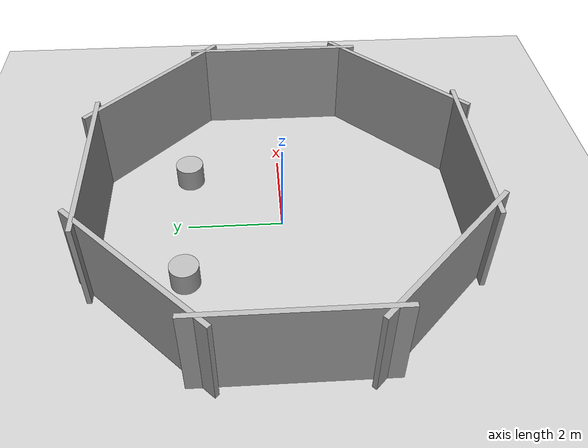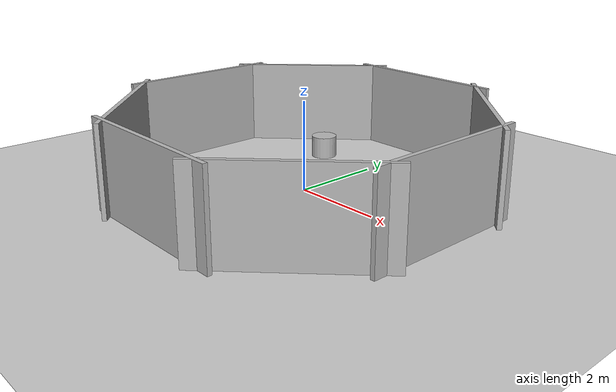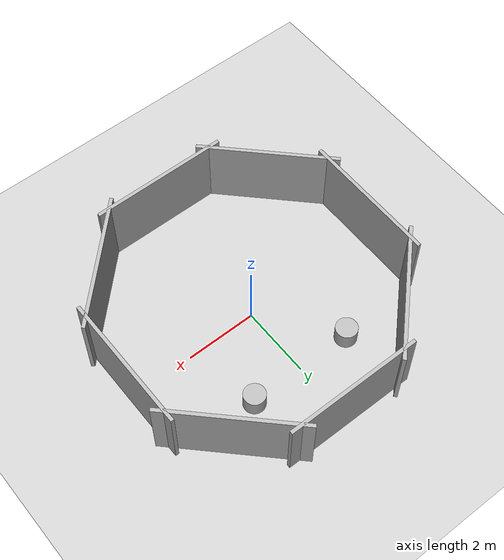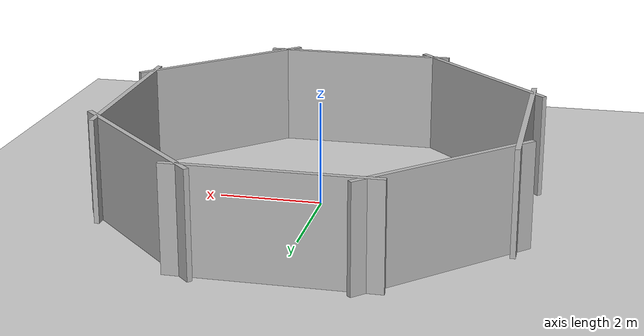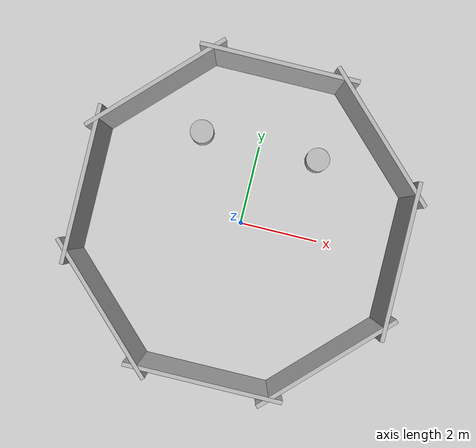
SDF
<?xml version="1.0"?>
<sdf version="1.6">
  <world name="default">
    <plugin
      filename="gz-sim-physics-system"
      name="gz::sim::systems::Physics">
    </plugin>
    <plugin
      filename="gz-sim-user-commands-system"
      name="gz::sim::systems::UserCommands">
    </plugin>
    <plugin
      filename="gz-sim-scene-broadcaster-system"
      name="gz::sim::systems::SceneBroadcaster">
    </plugin>
    <plugin
      filename="gz-sim-sensors-system"
      name="gz::sim::systems::Sensors">
      <render_engine>ogre2</render_engine>
    </plugin>
    <plugin
      filename="gz-sim-imu-system"
      name="gz::sim::systems::Imu">
    </plugin>
    <include>
      <uri>https://fuel.gazebosim.org/1.0/OpenRobotics/models/Ground Plane</uri>
    </include>

    <include>
      <uri>https://fuel.gazebosim.org/1.0/OpenRobotics/models/Sun</uri>
    </include>

    <scene>
      <shadows>false</shadows>
    </scene>

    <gui fullscreen='0'>
      <camera name='user_camera'>
        <pose frame=''>0.319654 -0.235002 9.29441 0 1.5138 0.009599</pose>
        <view_controller>orbit</view_controller>
        <projection_type>perspective</projection_type>
      </camera>
    </gui>

    <physics type="ode">
      <real_time_update_rate>1000.0</real_time_update_rate>
      <max_step_size>0.001</max_step_size>
      <real_time_factor>1</real_time_factor>
      <ode>
        <solver>
          <type>quick</type>
          <iters>150</iters>
          <precon_iters>0</precon_iters>
          <sor>1.400000</sor>
          <use_dynamic_moi_rescaling>1</use_dynamic_moi_rescaling>
        </solver>
        <constraints>
          <cfm>0.00001</cfm>
          <erp>0.2</erp>
          <contact_max_correcting_vel>2000.000000</contact_max_correcting_vel>
          <contact_surface_layer>0.01000</contact_surface_layer>
        </constraints>
      </ode>
    </physics>

    <model name="octagon_walls">
      <static>true</static>

      <!-- wall 1 -->
      <link name="wall1">
        <pose>3.83 0 1 0 0 1.5708</pose>
        <visual name="visual1">
          <geometry>
            <box>
              <size>3.83 0.1 2</size>
            </box>
          </geometry>
        </visual>
        <collision name="collision1">
          <geometry>
            <box>
              <size>3.83 0.1 2</size>
            </box>
          </geometry>
        </collision>
      </link>

      <!-- wall 2 -->
      <link name="wall2">
        <pose>2.71 2.71 1 0 0 2.3619</pose>
        <visual name="visual2">
          <geometry>
            <box>
              <size>3.83 0.1 2</size>
            </box>
          </geometry>
        </visual>
        <collision name="collision2">
          <geometry>
            <box>
              <size>3.83 0.1 2</size>
            </box>
          </geometry>
        </collision>
      </link>

      <!-- wall 3 -->
      <link name="wall3">
        <pose>0 3.83 1 0 0 3.14159</pose>
        <visual name="visual3">
          <geometry>
            <box>
              <size>3.83 0.1 2</size>
            </box>
          </geometry>
        </visual>
        <collision name="collision3">
          <geometry>
            <box>
              <size>3.83 0.1 2</size>
            </box>
          </geometry>
        </collision>
      </link>

      <!-- wall 4 -->
      <link name="wall4">
        <pose>-2.71 2.71 1 0 0 3.92699</pose>
        <visual name="visual4">
          <geometry>
            <box>
              <size>3.83 0.1 2</size>
            </box>
          </geometry>
        </visual>
        <collision name="collision4">
          <geometry>
            <box>
              <size>3.83 0.1 2</size>
            </box>
          </geometry>
        </collision>
      </link>

      <!-- wall 5 -->
      <link name="wall5">
        <pose>-3.83 0 1 0 0 4.7124</pose>
        <visual name="visual5">
          <geometry>
            <box>
              <size>3.83 0.1 2</size>
            </box>
          </geometry>
        </visual>
        <collision name="collision5">
          <geometry>
            <box>
              <size>3.83 0.1 2</size>
            </box>
          </geometry>
        </collision>
      </link>

      <!-- wall 6 -->
      <link name="wall6">
        <pose>-2.71 -2.71 1 0 0 -0.7854</pose>
        <visual name="visual6">
          <geometry>
            <box>
              <size>3.83 0.1 2</size>
            </box>
          </geometry>
        </visual>
        <collision name="collision6">
          <geometry>
            <box>
              <size>3.83 0.1 2</size>
            </box>
          </geometry>
        </collision>
      </link>

      <!-- wall 7 -->
      <link name="wall7">
        <pose>0 -3.83 1 0 0 0</pose>
        <visual name="visual7">
          <geometry>
            <box>
              <size>3.83 0.1 2</size>
            </box>
          </geometry>
        </visual>
        <collision name="collision7">
          <geometry>
            <box>
              <size>3.83 0.1 2</size>
            </box>
          </geometry>
        </collision>
      </link>

      <!-- wall 8 -->
      <link name="wall8">
        <pose>2.71 -2.71 1 0 0 0.785398</pose>
        <visual name="visual8">
          <geometry>
            <box>
              <size>3.83 0.1 2</size>
            </box>
          </geometry>
        </visual>
        <collision name="collision8">
          <geometry>
            <box>
              <size>3.83 0.1 2</size>
            </box>
          </geometry>
        </collision>
      </link>

      <!-- Cylinder 1 -->
      <model name="inner_cyl_1">
        <pose>1.5 2 0 0 0 0</pose>
        <link name="link">
          <collision name="col">
            <geometry>
              <cylinder>
                <radius>0.3</radius>
                <length>1</length>
              </cylinder>
            </geometry>
          </collision>
          <visual name="vis">
            <geometry>
              <cylinder>
                <radius>0.3</radius>
                <length>1</length>
              </cylinder>
            </geometry>
          </visual>
        </link>
      </model>

      <!-- Cylinder 2 -->
      <model name="inner_cyl_2">
        <pose>-1.5 2 0 0 0 0</pose>
        <link name="link">
          <collision name="col">
            <geometry>
              <cylinder>
                <radius>0.3</radius>
                <length>1</length>
              </cylinder>
            </geometry>
          </collision>
          <visual name="vis">
            <geometry>
              <cylinder>
                <radius>0.3</radius>
                <length>1</length>
              </cylinder>
            </geometry>
          </visual>
        </link>
      </model>

    </model>

  </world>
</sdf>
